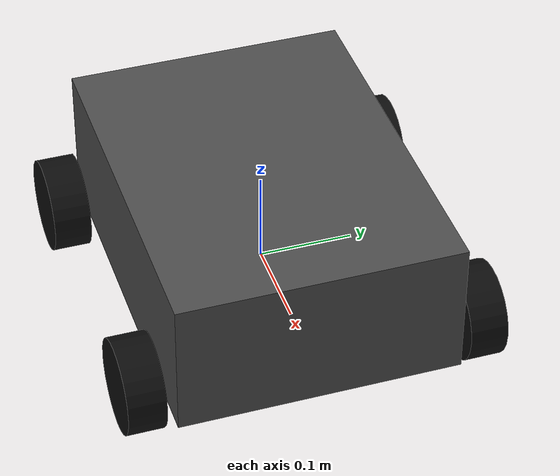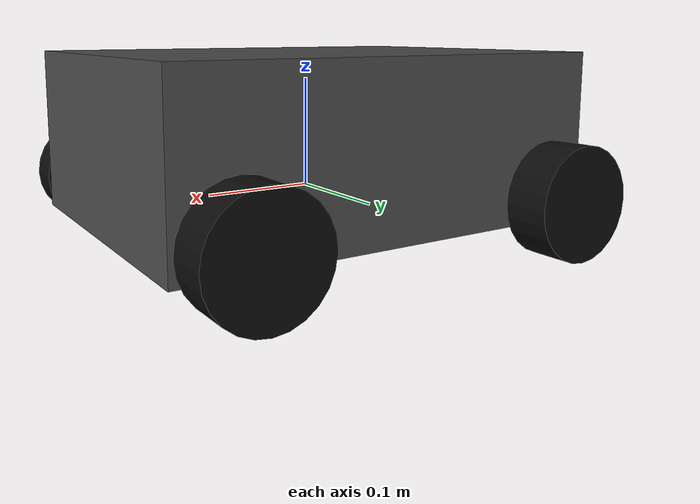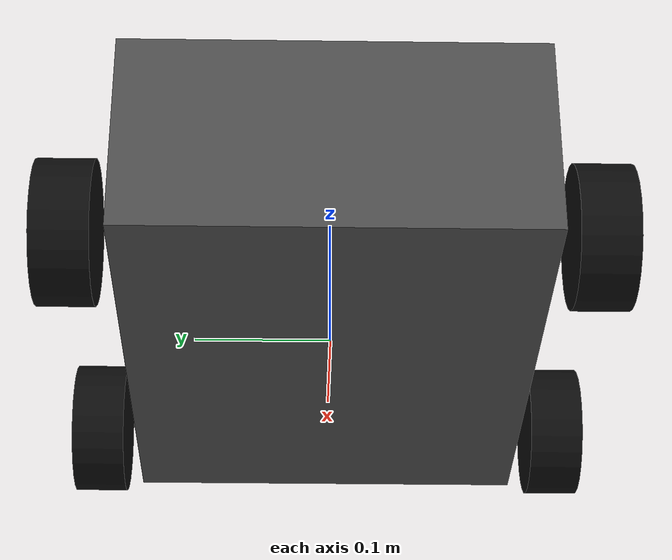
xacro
<?xml version="1.0"?>
<robot name="four_wheel_robot" xmlns:xacro="http://www.ros.org/wiki/xacro">

  <!--  Stage 1: bare chassis + 4 wheels, skid-steer via DiffDrive.   -->
  <!--  IMU / camera are added in a later stage, not here.            -->

  <!-- ===== Tunable dimensions ===== -->
  <xacro:property name="chassis_length" value="0.40"/>
  <xacro:property name="chassis_width"  value="0.30"/>
  <xacro:property name="chassis_height" value="0.15"/>
  <xacro:property name="chassis_mass"   value="5.0"/>

  <xacro:property name="wheel_radius" value="0.05"/>
  <xacro:property name="wheel_width"  value="0.04"/>
  <xacro:property name="wheel_mass"   value="0.5"/>

  <!-- distance from base_link origin to wheel center, x = fore/aft, y = left/right -->
  <xacro:property name="wheel_x_offset" value="0.15"/>
  <xacro:property name="wheel_y_offset" value="${chassis_width/2 + wheel_width/2 + 0.01}"/>
  <xacro:property name="wheel_z_offset" value="0.0"/>

  <xacro:property name="chassis_ground_clearance" value="${wheel_radius}"/>

  <!-- ===== Reusable inertia macros ===== -->
  <xacro:macro name="box_inertia" params="m x y z">
    <inertia ixx="${m*(y*y+z*z)/12}" ixy="0.0" ixz="0.0"
             iyy="${m*(x*x+z*z)/12}" iyz="0.0"
             izz="${m*(x*x+y*y)/12}"/>
  </xacro:macro>

  <xacro:macro name="cylinder_inertia" params="m r h">
    <inertia ixx="${m*(3*r*r+h*h)/12}" ixy="0.0" ixz="0.0"
             iyy="${m*(3*r*r+h*h)/12}" iyz="0.0"
             izz="${m*r*r/2}"/>
  </xacro:macro>

  <!-- ===== base_link / chassis ===== -->
  <link name="base_link">
    <visual>
      <origin xyz="0 0 0" rpy="0 0 0"/>
      <geometry>
        <box size="${chassis_length} ${chassis_width} ${chassis_height}"/>
      </geometry>
      <material name="chassis_grey">
        <color rgba="0.3 0.3 0.3 1.0"/>
      </material>
    </visual>
    <collision>
      <origin xyz="0 0 0" rpy="0 0 0"/>
      <geometry>
        <box size="${chassis_length} ${chassis_width} ${chassis_height}"/>
      </geometry>
    </collision>
    <inertial>
      <origin xyz="0 0 0" rpy="0 0 0"/>
      <mass value="${chassis_mass}"/>
      <xacro:box_inertia m="${chassis_mass}" x="${chassis_length}" y="${chassis_width}" z="${chassis_height}"/>
    </inertial>
  </link>

  <!-- base_footprint sits on the ground; base_link is chassis_ground_clearance above it -->
  <link name="base_footprint"/>

  <joint name="base_footprint_joint" type="fixed">
    <parent link="base_footprint"/>
    <child link="base_link"/>
    <origin xyz="0 0 ${chassis_ground_clearance}" rpy="0 0 0"/>
  </joint>

  <!-- ===== Wheel macro ===== -->
  <xacro:macro name="wheel" params="prefix x_off y_off">
    <link name="${prefix}_wheel_link">
      <visual>
        <!-- rotate cylinder so its axis lies along Y (rolling about Y) -->
        <origin xyz="0 0 0" rpy="1.5708 0 0"/>
        <geometry>
          <cylinder radius="${wheel_radius}" length="${wheel_width}"/>
        </geometry>
        <material name="wheel_black">
          <color rgba="0.05 0.05 0.05 1.0"/>
        </material>
      </visual>
      <collision>
        <origin xyz="0 0 0" rpy="1.5708 0 0"/>
        <geometry>
          <cylinder radius="${wheel_radius}" length="${wheel_width}"/>
        </geometry>
      </collision>
      <inertial>
        <origin xyz="0 0 0" rpy="0 0 0"/>
        <mass value="${wheel_mass}"/>
        <xacro:cylinder_inertia m="${wheel_mass}" r="${wheel_radius}" h="${wheel_width}"/>
      </inertial>
    </link>

    <joint name="${prefix}_wheel_joint" type="continuous">
      <parent link="base_link"/>
      <child link="${prefix}_wheel_link"/>
      <origin xyz="${x_off} ${y_off} ${-chassis_ground_clearance + wheel_z_offset}" rpy="0 0 0"/>
      <axis xyz="0 1 0"/>
      <dynamics damping="0.1" friction="0.05"/>
    </joint>

    <gazebo reference="${prefix}_wheel_link">
      <mu1>1.0</mu1>
      <mu2>1.0</mu2>
    </gazebo>
  </xacro:macro>

  <xacro:wheel prefix="front_left"  x_off="${wheel_x_offset}"  y_off="${wheel_y_offset}"/>
  <xacro:wheel prefix="front_right" x_off="${wheel_x_offset}"  y_off="${-wheel_y_offset}"/>
  <xacro:wheel prefix="rear_left"   x_off="${-wheel_x_offset}" y_off="${wheel_y_offset}"/>
  <xacro:wheel prefix="rear_right"  x_off="${-wheel_x_offset}" y_off="${-wheel_y_offset}"/>

  <!-- ===== Gazebo DiffDrive plugin (skid-steer: 2 joints per side) =====
       Fortress (ROS2 Humble) uses the "ignition::" plugin namespace, not "gz::" -->
  <gazebo>
    <plugin filename="libignition-gazebo-diff-drive-system.so" name="ignition::gazebo::systems::DiffDrive">
      <left_joint>front_left_wheel_joint</left_joint>
      <left_joint>rear_left_wheel_joint</left_joint>
      <right_joint>front_right_wheel_joint</right_joint>
      <right_joint>rear_right_wheel_joint</right_joint>

      <wheel_separation>${2*wheel_y_offset}</wheel_separation>
      <wheel_radius>${wheel_radius}</wheel_radius>

      <odom_publish_frequency>50</odom_publish_frequency>
      <topic>cmd_vel</topic>
      <odom_topic>odom</odom_topic>
      <tf_topic>tf</tf_topic>
      <frame_id>odom</frame_id>
      <child_frame_id>base_footprint</child_frame_id>

      <max_linear_acceleration>2.0</max_linear_acceleration>
      <min_linear_acceleration>-2.0</min_linear_acceleration>
      <max_angular_acceleration>4.0</max_angular_acceleration>
      <min_angular_acceleration>-4.0</min_angular_acceleration>
    </plugin>

    <!-- publishes ground-truth-ish joint states for the wheels, useful later -->
    <plugin filename="libignition-gazebo-joint-state-publisher-system.so" name="ignition::gazebo::systems::JointStatePublisher"/>
  </gazebo>

</robot>
